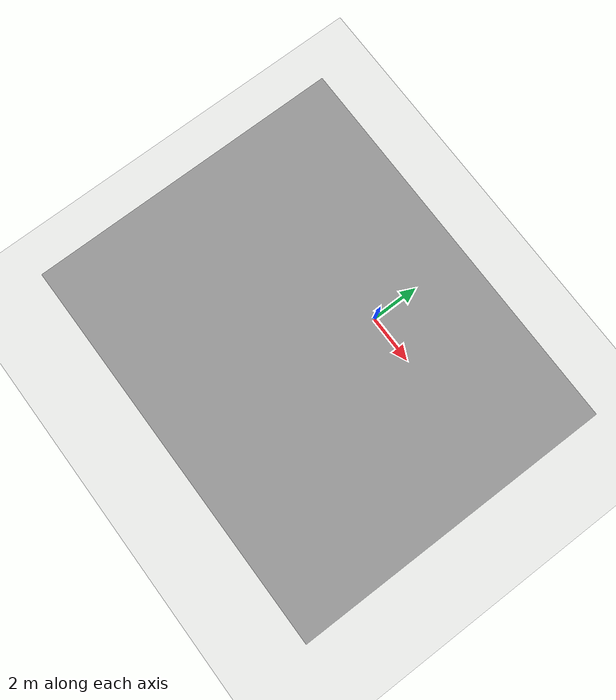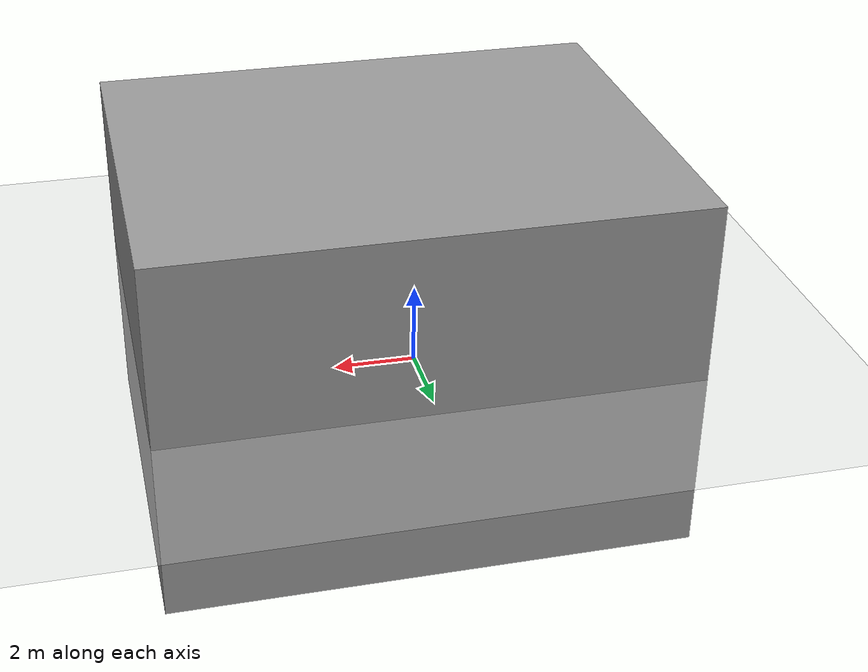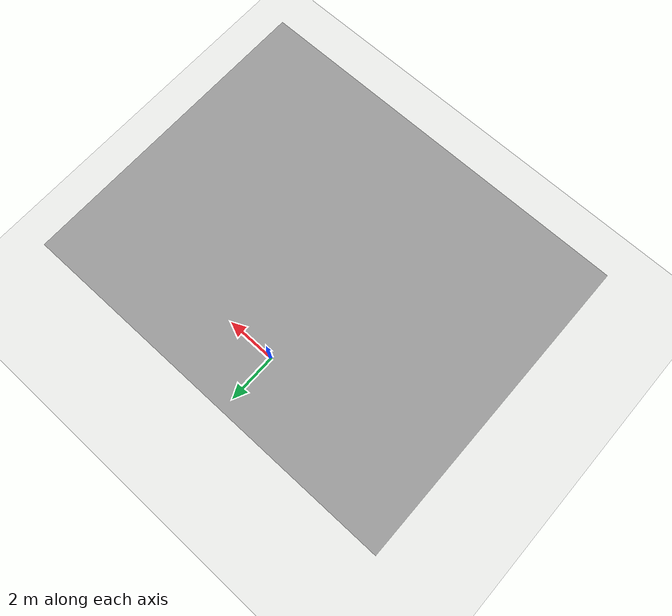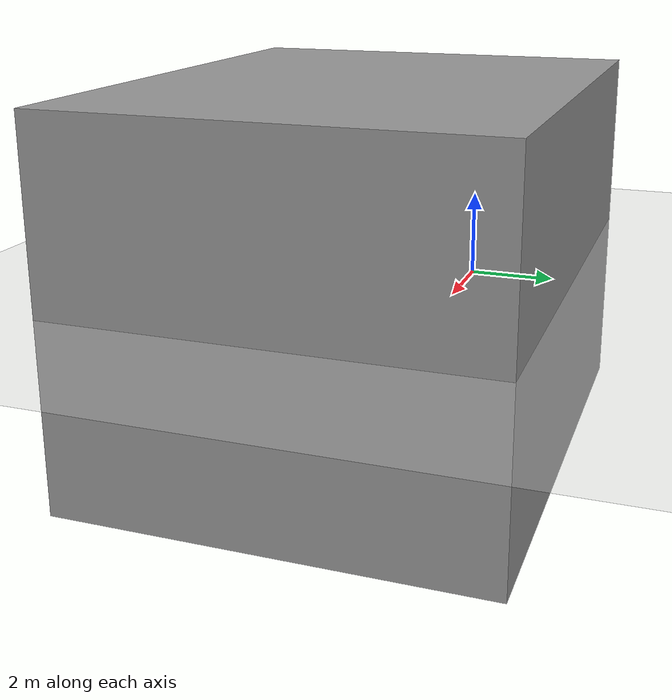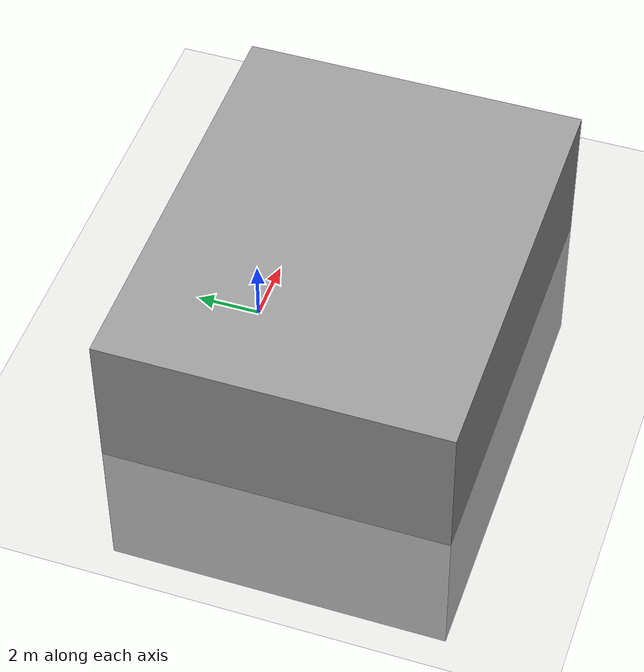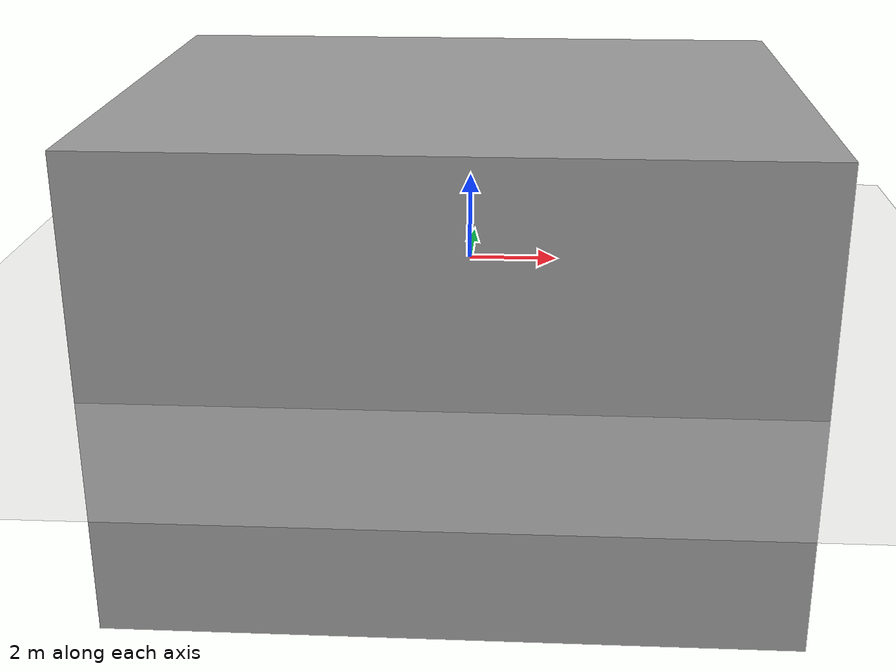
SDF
<sdf version='1.7'>
  <world name='default'>
    <model name='ground_plane'>
      <static>1</static>
      <link name='link'>
        <collision name='collision'>
          <geometry>
            <plane>
              <normal>0 0 1</normal>
              <size>100 100</size>
            </plane>
          </geometry>
          <surface>
            <contact>
              <collide_bitmask>65535</collide_bitmask>
              <ode/>
            </contact>
            <friction>
              <ode>
                <mu>100</mu>
                <mu2>50</mu2>
              </ode>
              <torsional>
                <ode/>
              </torsional>
            </friction>
            <bounce/>
          </surface>
          <max_contacts>10</max_contacts>
        </collision>
        <visual name='visual'>
          <cast_shadows>0</cast_shadows>
          <geometry>
            <plane>
              <normal>0 0 1</normal>
              <size>100 100</size>
            </plane>
          </geometry>
          <material>
            <script>
              <uri>file://media/materials/scripts/gazebo.material</uri>
              <name>Gazebo/Grey</name>
            </script>
          </material>
        </visual>
        <self_collide>0</self_collide>
        <enable_wind>0</enable_wind>
        <kinematic>0</kinematic>
      </link>
    </model>
    <gravity>0 0 -9.8</gravity>
    <magnetic_field>6e-06 2.3e-05 -4.2e-05</magnetic_field>
    <atmosphere type='adiabatic'/>
    <physics type='ode'>
      <max_step_size>0.001</max_step_size>
      <real_time_factor>1</real_time_factor>
      <real_time_update_rate>1000</real_time_update_rate>
    </physics>
    <scene>
      <ambient>0.4 0.4 0.4 1</ambient>
      <background>0.7 0.7 0.7 1</background>
      <shadows>1</shadows>
    </scene>
    <audio>
      <device>default</device>
    </audio>
    <wind/>
    <spherical_coordinates>
      <surface_model>EARTH_WGS84</surface_model>
      <latitude_deg>0</latitude_deg>
      <longitude_deg>0</longitude_deg>
      <elevation>0</elevation>
      <heading_deg>0</heading_deg>
    </spherical_coordinates>
    <model name='RMUL_2025'>
      <link name='link_3'>
        <inertial>
          <mass>1</mass>
          <inertia>
            <ixx>0.166667</ixx>
            <ixy>0</ixy>
            <ixz>0</ixz>
            <iyy>0.166667</iyy>
            <iyz>0</iyz>
            <izz>0.166667</izz>
          </inertia>
          <pose>0 0 0 0 -0 0</pose>
        </inertial>
        <pose>0 0 0 0 -0 0</pose>
        <gravity>1</gravity>
        <self_collide>0</self_collide>
        <kinematic>0</kinematic>
        <enable_wind>0</enable_wind>
        <visual name='visual'>
          <pose>0 0 0 0 0 0</pose>
          <geometry>
            <mesh>
              <uri>model://RMUL2025_world/meshes/RMUL_2025.stl</uri>
             <scale>1 1 1</scale>
            </mesh>
          </geometry>
          <material>
            <lighting>1</lighting>
            <script>
              <uri>file://media/materials/scripts/gazebo.material</uri>
              <name>Gazebo/Grey</name>
            </script>
            <shader type='pixel'>
              <normal_map>__default__</normal_map>
            </shader>
            <ambient>0.3 0.3 0.3 1</ambient>
            <diffuse>0.7 0.7 0.7 1</diffuse>
            <specular>0.01 0.01 0.01 1</specular>
            <emissive>0 0 0 1</emissive>
          </material>
          <transparency>0</transparency>
          <cast_shadows>1</cast_shadows>
        </visual>
        <collision name='collision'>
          <laser_retro>0</laser_retro>
          <max_contacts>10</max_contacts>
          <pose>0 0 0 0 0 0</pose>
          <geometry>
            <mesh>
              <uri>model://RMUL2025_world/meshes/RMUL_2025.stl</uri>
             <scale>1 1 1</scale>
            </mesh>
          </geometry>
          <surface>
            <friction>
              <ode>
                <mu>1</mu>
                <mu2>1</mu2>
                <fdir1>0 0 0</fdir1>
                <slip1>0</slip1>
                <slip2>0</slip2>
              </ode>
              <torsional>
                <coefficient>1</coefficient>
                <patch_radius>0</patch_radius>
                <surface_radius>0</surface_radius>
                <use_patch_radius>1</use_patch_radius>
                <ode>
                  <slip>0</slip>
                </ode>
              </torsional>
            </friction>
            <bounce>
              <restitution_coefficient>0</restitution_coefficient>
              <threshold>1e+06</threshold>
            </bounce>
            <contact>
              <collide_without_contact>0</collide_without_contact>
              <collide_without_contact_bitmask>1</collide_without_contact_bitmask>
              <collide_bitmask>1</collide_bitmask>
              <ode>
                <soft_cfm>0</soft_cfm>
                <soft_erp>0.2</soft_erp>
                <kp>1e+13</kp>
                <kd>1</kd>
                <max_vel>0.01</max_vel>
                <min_depth>0</min_depth>
              </ode>
              <bullet>
                <split_impulse>1</split_impulse>
                <split_impulse_penetration_threshold>-0.01</split_impulse_penetration_threshold>
                <soft_cfm>0</soft_cfm>
                <soft_erp>0.2</soft_erp>
                <kp>1e+13</kp>
                <kd>1</kd>
              </bullet>
            </contact>
          </surface>
        </collision>
      </link>
      <static>1</static>
      <allow_auto_disable>1</allow_auto_disable>
    </model>
    <light name='user_directional_light_0' type='directional'>
      <pose>0 0 10 0 0 0</pose>
      <diffuse>0.5 0.5 0.5 1</diffuse>
      <specular>0.1 0.1 0.1 1</specular>
      <direction>0.1 0.1 -0.9</direction>
      <attenuation>
        <range>20</range>
        <constant>0.5</constant>
        <linear>0.01</linear>
        <quadratic>0.001</quadratic>
      </attenuation>
      <cast_shadows>1</cast_shadows>
    </light>
    <gui fullscreen='0'>
      <camera name='user_camera'>
        <pose>0 0 15 -2.7e-05 1.5698 1.56647</pose>
        <view_controller>orbit</view_controller>
        <projection_type>perspective</projection_type>
      </camera>
    </gui>
  </world>
</sdf>
